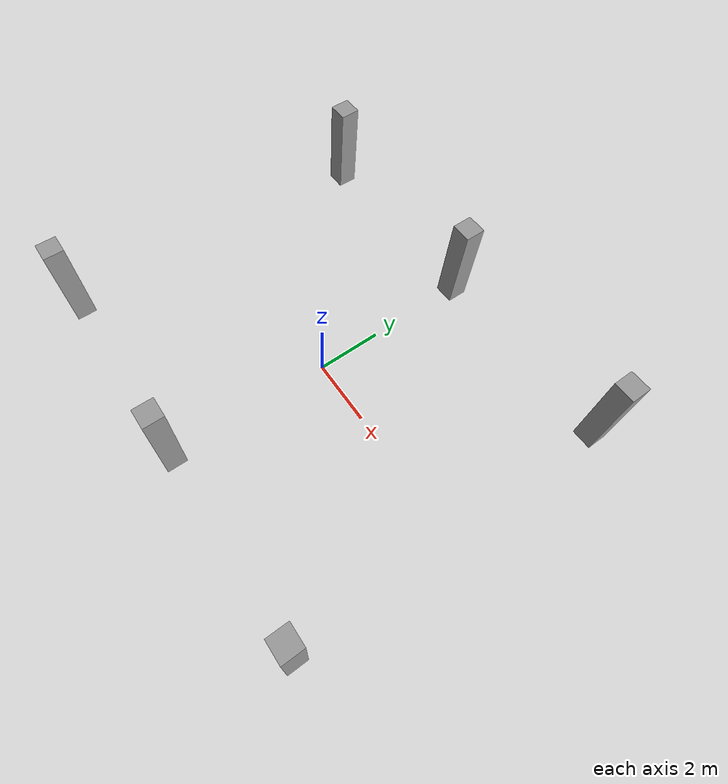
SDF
<?xml version='1.0'?>
<sdf version='1.6'>
  <model name='wall-room-rough'>
    <static>true</static>
    <link name='base_link'>
      <pose frame=''>0 0 0 0 -0 0</pose>
      <inertial>
        <pose frame=''>0 0 2.6266 0 -0 0</pose>
        <mass>72272</mass>
        <inertia>
          <ixx>2.0471e+06</ixx>
          <ixy>3.1237e-10</ixy>
          <ixz>-7.1616e-10</ixz>
          <iyy>2.0055e+06</iyy>
          <iyz>9.3517e-11</iyz>
          <izz>4.0205e+06</izz>
        </inertia>
      </inertial>
      <collision name='base_link_collision'>
        <pose frame=''>0 0 0 0 -0 0</pose>
        <geometry>
          <mesh>
            <scale>1 1 1</scale>
            <uri>model://walls/wall-room-rough/meshes/base_link.STL</uri>
          </mesh>
        </geometry>
      </collision>
      <visual name='base_link_visual'>
        <pose frame=''>0 0 0 0 -0 0</pose>
        <geometry>
          <mesh>
            <scale>1 1 1</scale>
            <uri>model://walls/wall-room-rough/meshes/base_link.STL</uri>
          </mesh>
        </geometry>
        <material>
          <lighting>1</lighting>
          <script>
            <uri>file://media/materials/scripts/gazebo.material</uri>
            <name>Gazebo/Grey</name>
          </script>
          <shader type='pixel'>
            <normal_map>__default__</normal_map>
          </shader>
          <ambient>0.3 0.3 0.3 1</ambient>
          <diffuse>0.7 0.7 0.7 1</diffuse>
          <specular>0.01 0.01 0.01 1</specular>
          <emissive>0 0 0 1</emissive>
        </material>
        <transparency>1</transparency>
      </visual>
    </link>
    <link name='pillar_0'>
      <inertial>
        <mass>1</mass>
        <inertia>
          <ixx>0.166667</ixx>
          <ixy>0</ixy>
          <ixz>0</ixz>
          <iyy>0.166667</iyy>
          <iyz>0</iyz>
          <izz>0.166667</izz>
        </inertia>
        <pose frame=''>0 0 0 0 -0 0</pose>
      </inertial>
      <pose frame=''>0 5 1.5 0 -0 0</pose>
      <gravity>1</gravity>
      <self_collide>0</self_collide>
      <kinematic>0</kinematic>
      <enable_wind>0</enable_wind>
      <visual name='visual'>
        <pose frame=''>0 0 0 0 -0 0</pose>
        <geometry>
          <box>
            <size>0.6 0.6 3</size>
          </box>
        </geometry>
        <material>
          <lighting>1</lighting>
          <script>
            <uri>file://media/materials/scripts/gazebo.material</uri>
            <name>Gazebo/Grey</name>
          </script>
          <shader type='pixel'>
            <normal_map>__default__</normal_map>
          </shader>
          <ambient>0.3 0.3 0.3 1</ambient>
          <diffuse>0.7 0.7 0.7 1</diffuse>
          <specular>0.01 0.01 0.01 1</specular>
          <emissive>0 0 0 1</emissive>
        </material>
        <transparency>0</transparency>
        <cast_shadows>1</cast_shadows>
      </visual>
      <collision name='collision'>
        <laser_retro>0</laser_retro>
        <max_contacts>10</max_contacts>
        <pose frame=''>0 0 0 0 -0 0</pose>
        <geometry>
          <box>
            <size>0.6 0.6 3</size>
          </box>
        </geometry>
        <surface>
          <friction>
            <ode>
              <mu>1</mu>
              <mu2>1</mu2>
              <fdir1>0 0 0</fdir1>
              <slip1>0</slip1>
              <slip2>0</slip2>
            </ode>
            <torsional>
              <coefficient>1</coefficient>
              <patch_radius>0</patch_radius>
              <surface_radius>0</surface_radius>
              <use_patch_radius>1</use_patch_radius>
              <ode>
                <slip>0</slip>
              </ode>
            </torsional>
          </friction>
          <bounce>
            <restitution_coefficient>0</restitution_coefficient>
            <threshold>1e+06</threshold>
          </bounce>
          <contact>
            <collide_without_contact>0</collide_without_contact>
            <collide_without_contact_bitmask>1</collide_without_contact_bitmask>
            <collide_bitmask>1</collide_bitmask>
            <ode>
              <soft_cfm>0</soft_cfm>
              <soft_erp>0.2</soft_erp>
              <kp>1e+13</kp>
              <kd>1</kd>
              <max_vel>0.01</max_vel>
              <min_depth>0</min_depth>
            </ode>
            <bullet>
              <split_impulse>1</split_impulse>
              <split_impulse_penetration_threshold>-0.01</split_impulse_penetration_threshold>
              <soft_cfm>0</soft_cfm>
              <soft_erp>0.2</soft_erp>
              <kp>1e+13</kp>
              <kd>1</kd>
            </bullet>
          </contact>
        </surface>
      </collision>
    </link>
    <link name='pillar_1'>
      <inertial>
        <mass>1</mass>
        <inertia>
          <ixx>0.166667</ixx>
          <ixy>0</ixy>
          <ixz>0</ixz>
          <iyy>0.166667</iyy>
          <iyz>0</iyz>
          <izz>0.166667</izz>
        </inertia>
        <pose frame=''>0 0 0 0 -0 0</pose>
      </inertial>
      <pose frame=''>0 -5 1.5 0 -0 0</pose>
      <gravity>1</gravity>
      <self_collide>0</self_collide>
      <kinematic>0</kinematic>
      <enable_wind>0</enable_wind>
      <visual name='visual'>
        <pose frame=''>0 0 0 0 -0 0</pose>
        <geometry>
          <box>
            <size>0.6 0.6 3</size>
          </box>
        </geometry>
        <material>
          <lighting>1</lighting>
          <script>
            <uri>file://media/materials/scripts/gazebo.material</uri>
            <name>Gazebo/Grey</name>
          </script>
          <shader type='pixel'>
            <normal_map>__default__</normal_map>
          </shader>
          <ambient>0.3 0.3 0.3 1</ambient>
          <diffuse>0.7 0.7 0.7 1</diffuse>
          <specular>0.01 0.01 0.01 1</specular>
          <emissive>0 0 0 1</emissive>
        </material>
        <transparency>0</transparency>
        <cast_shadows>1</cast_shadows>
      </visual>
      <collision name='collision'>
        <laser_retro>0</laser_retro>
        <max_contacts>10</max_contacts>
        <pose frame=''>0 0 0 0 -0 0</pose>
        <geometry>
          <box>
            <size>0.6 0.6 3</size>
          </box>
        </geometry>
        <surface>
          <friction>
            <ode>
              <mu>1</mu>
              <mu2>1</mu2>
              <fdir1>0 0 0</fdir1>
              <slip1>0</slip1>
              <slip2>0</slip2>
            </ode>
            <torsional>
              <coefficient>1</coefficient>
              <patch_radius>0</patch_radius>
              <surface_radius>0</surface_radius>
              <use_patch_radius>1</use_patch_radius>
              <ode>
                <slip>0</slip>
              </ode>
            </torsional>
          </friction>
          <bounce>
            <restitution_coefficient>0</restitution_coefficient>
            <threshold>1e+06</threshold>
          </bounce>
          <contact>
            <collide_without_contact>0</collide_without_contact>
            <collide_without_contact_bitmask>1</collide_without_contact_bitmask>
            <collide_bitmask>1</collide_bitmask>
            <ode>
              <soft_cfm>0</soft_cfm>
              <soft_erp>0.2</soft_erp>
              <kp>1e+13</kp>
              <kd>1</kd>
              <max_vel>0.01</max_vel>
              <min_depth>0</min_depth>
            </ode>
            <bullet>
              <split_impulse>1</split_impulse>
              <split_impulse_penetration_threshold>-0.01</split_impulse_penetration_threshold>
              <soft_cfm>0</soft_cfm>
              <soft_erp>0.2</soft_erp>
              <kp>1e+13</kp>
              <kd>1</kd>
            </bullet>
          </contact>
        </surface>
      </collision>
    </link>
    <link name='pillar_2'>
      <inertial>
        <mass>1</mass>
        <inertia>
          <ixx>0.166667</ixx>
          <ixy>0</ixy>
          <ixz>0</ixz>
          <iyy>0.166667</iyy>
          <iyz>0</iyz>
          <izz>0.166667</izz>
        </inertia>
        <pose frame=''>0 0 0 0 -0 0</pose>
      </inertial>
      <pose frame=''>-6 5 1.5 0 -0 0</pose>
      <gravity>1</gravity>
      <self_collide>0</self_collide>
      <kinematic>0</kinematic>
      <enable_wind>0</enable_wind>
      <visual name='visual'>
        <pose frame=''>0 0 0 0 -0 0</pose>
        <geometry>
          <box>
            <size>0.6 0.6 3</size>
          </box>
        </geometry>
        <material>
          <lighting>1</lighting>
          <script>
            <uri>file://media/materials/scripts/gazebo.material</uri>
            <name>Gazebo/Grey</name>
          </script>
          <shader type='pixel'>
            <normal_map>__default__</normal_map>
          </shader>
          <ambient>0.3 0.3 0.3 1</ambient>
          <diffuse>0.7 0.7 0.7 1</diffuse>
          <specular>0.01 0.01 0.01 1</specular>
          <emissive>0 0 0 1</emissive>
        </material>
        <transparency>0</transparency>
        <cast_shadows>1</cast_shadows>
      </visual>
      <collision name='collision'>
        <laser_retro>0</laser_retro>
        <max_contacts>10</max_contacts>
        <pose frame=''>0 0 0 0 -0 0</pose>
        <geometry>
          <box>
            <size>0.6 0.6 3</size>
          </box>
        </geometry>
        <surface>
          <friction>
            <ode>
              <mu>1</mu>
              <mu2>1</mu2>
              <fdir1>0 0 0</fdir1>
              <slip1>0</slip1>
              <slip2>0</slip2>
            </ode>
            <torsional>
              <coefficient>1</coefficient>
              <patch_radius>0</patch_radius>
              <surface_radius>0</surface_radius>
              <use_patch_radius>1</use_patch_radius>
              <ode>
                <slip>0</slip>
              </ode>
            </torsional>
          </friction>
          <bounce>
            <restitution_coefficient>0</restitution_coefficient>
            <threshold>1e+06</threshold>
          </bounce>
          <contact>
            <collide_without_contact>0</collide_without_contact>
            <collide_without_contact_bitmask>1</collide_without_contact_bitmask>
            <collide_bitmask>1</collide_bitmask>
            <ode>
              <soft_cfm>0</soft_cfm>
              <soft_erp>0.2</soft_erp>
              <kp>1e+13</kp>
              <kd>1</kd>
              <max_vel>0.01</max_vel>
              <min_depth>0</min_depth>
            </ode>
            <bullet>
              <split_impulse>1</split_impulse>
              <split_impulse_penetration_threshold>-0.01</split_impulse_penetration_threshold>
              <soft_cfm>0</soft_cfm>
              <soft_erp>0.2</soft_erp>
              <kp>1e+13</kp>
              <kd>1</kd>
            </bullet>
          </contact>
        </surface>
      </collision>
    </link>
    <link name='pillar_3'>
      <inertial>
        <mass>1</mass>
        <inertia>
          <ixx>0.166667</ixx>
          <ixy>0</ixy>
          <ixz>0</ixz>
          <iyy>0.166667</iyy>
          <iyz>0</iyz>
          <izz>0.166667</izz>
        </inertia>
        <pose frame=''>0 0 0 0 -0 0</pose>
      </inertial>
      <pose frame=''>-6 -5 1.5 0 -0 0</pose>
      <gravity>1</gravity>
      <self_collide>0</self_collide>
      <kinematic>0</kinematic>
      <enable_wind>0</enable_wind>
      <visual name='visual'>
        <pose frame=''>0 0 0 0 -0 0</pose>
        <geometry>
          <box>
            <size>0.6 0.6 3</size>
          </box>
        </geometry>
        <material>
          <lighting>1</lighting>
          <script>
            <uri>file://media/materials/scripts/gazebo.material</uri>
            <name>Gazebo/Grey</name>
          </script>
          <shader type='pixel'>
            <normal_map>__default__</normal_map>
          </shader>
          <ambient>0.3 0.3 0.3 1</ambient>
          <diffuse>0.7 0.7 0.7 1</diffuse>
          <specular>0.01 0.01 0.01 1</specular>
          <emissive>0 0 0 1</emissive>
        </material>
        <transparency>0</transparency>
        <cast_shadows>1</cast_shadows>
      </visual>
      <collision name='collision'>
        <laser_retro>0</laser_retro>
        <max_contacts>10</max_contacts>
        <pose frame=''>0 0 0 0 -0 0</pose>
        <geometry>
          <box>
            <size>0.6 0.6 3</size>
          </box>
        </geometry>
        <surface>
          <friction>
            <ode>
              <mu>1</mu>
              <mu2>1</mu2>
              <fdir1>0 0 0</fdir1>
              <slip1>0</slip1>
              <slip2>0</slip2>
            </ode>
            <torsional>
              <coefficient>1</coefficient>
              <patch_radius>0</patch_radius>
              <surface_radius>0</surface_radius>
              <use_patch_radius>1</use_patch_radius>
              <ode>
                <slip>0</slip>
              </ode>
            </torsional>
          </friction>
          <bounce>
            <restitution_coefficient>0</restitution_coefficient>
            <threshold>1e+06</threshold>
          </bounce>
          <contact>
            <collide_without_contact>0</collide_without_contact>
            <collide_without_contact_bitmask>1</collide_without_contact_bitmask>
            <collide_bitmask>1</collide_bitmask>
            <ode>
              <soft_cfm>0</soft_cfm>
              <soft_erp>0.2</soft_erp>
              <kp>1e+13</kp>
              <kd>1</kd>
              <max_vel>0.01</max_vel>
              <min_depth>0</min_depth>
            </ode>
            <bullet>
              <split_impulse>1</split_impulse>
              <split_impulse_penetration_threshold>-0.01</split_impulse_penetration_threshold>
              <soft_cfm>0</soft_cfm>
              <soft_erp>0.2</soft_erp>
              <kp>1e+13</kp>
              <kd>1</kd>
            </bullet>
          </contact>
        </surface>
      </collision>
    </link>
    <link name='pillar_4'>
      <inertial>
        <mass>1</mass>
        <inertia>
          <ixx>0.166667</ixx>
          <ixy>0</ixy>
          <ixz>0</ixz>
          <iyy>0.166667</iyy>
          <iyz>0</iyz>
          <izz>0.166667</izz>
        </inertia>
        <pose frame=''>0 0 0 0 -0 0</pose>
      </inertial>
      <pose frame=''>6 5 1.5 0 -0 0</pose>
      <gravity>1</gravity>
      <self_collide>0</self_collide>
      <kinematic>0</kinematic>
      <enable_wind>0</enable_wind>
      <visual name='visual'>
        <pose frame=''>0 0 0 0 -0 0</pose>
        <geometry>
          <box>
            <size>0.6 0.6 3</size>
          </box>
        </geometry>
        <material>
          <lighting>1</lighting>
          <script>
            <uri>file://media/materials/scripts/gazebo.material</uri>
            <name>Gazebo/Grey</name>
          </script>
          <shader type='pixel'>
            <normal_map>__default__</normal_map>
          </shader>
          <ambient>0.3 0.3 0.3 1</ambient>
          <diffuse>0.7 0.7 0.7 1</diffuse>
          <specular>0.01 0.01 0.01 1</specular>
          <emissive>0 0 0 1</emissive>
        </material>
        <transparency>0</transparency>
        <cast_shadows>1</cast_shadows>
      </visual>
      <collision name='collision'>
        <laser_retro>0</laser_retro>
        <max_contacts>10</max_contacts>
        <pose frame=''>0 0 0 0 -0 0</pose>
        <geometry>
          <box>
            <size>0.6 0.6 3</size>
          </box>
        </geometry>
        <surface>
          <friction>
            <ode>
              <mu>1</mu>
              <mu2>1</mu2>
              <fdir1>0 0 0</fdir1>
              <slip1>0</slip1>
              <slip2>0</slip2>
            </ode>
            <torsional>
              <coefficient>1</coefficient>
              <patch_radius>0</patch_radius>
              <surface_radius>0</surface_radius>
              <use_patch_radius>1</use_patch_radius>
              <ode>
                <slip>0</slip>
              </ode>
            </torsional>
          </friction>
          <bounce>
            <restitution_coefficient>0</restitution_coefficient>
            <threshold>1e+06</threshold>
          </bounce>
          <contact>
            <collide_without_contact>0</collide_without_contact>
            <collide_without_contact_bitmask>1</collide_without_contact_bitmask>
            <collide_bitmask>1</collide_bitmask>
            <ode>
              <soft_cfm>0</soft_cfm>
              <soft_erp>0.2</soft_erp>
              <kp>1e+13</kp>
              <kd>1</kd>
              <max_vel>0.01</max_vel>
              <min_depth>0</min_depth>
            </ode>
            <bullet>
              <split_impulse>1</split_impulse>
              <split_impulse_penetration_threshold>-0.01</split_impulse_penetration_threshold>
              <soft_cfm>0</soft_cfm>
              <soft_erp>0.2</soft_erp>
              <kp>1e+13</kp>
              <kd>1</kd>
            </bullet>
          </contact>
        </surface>
      </collision>
    </link>
    <link name='pillar_5'>
      <inertial>
        <mass>1</mass>
        <inertia>
          <ixx>0.166667</ixx>
          <ixy>0</ixy>
          <ixz>0</ixz>
          <iyy>0.166667</iyy>
          <iyz>0</iyz>
          <izz>0.166667</izz>
        </inertia>
        <pose frame=''>0 0 0 0 -0 0</pose>
      </inertial>
      <pose frame=''>6 -5 1.5 0 -0 0</pose>
      <gravity>1</gravity>
      <self_collide>0</self_collide>
      <kinematic>0</kinematic>
      <enable_wind>0</enable_wind>
      <visual name='visual'>
        <pose frame=''>0 0 0 0 -0 0</pose>
        <geometry>
          <box>
            <size>0.6 0.6 3</size>
          </box>
        </geometry>
        <material>
          <lighting>1</lighting>
          <script>
            <uri>file://media/materials/scripts/gazebo.material</uri>
            <name>Gazebo/Grey</name>
          </script>
          <shader type='pixel'>
            <normal_map>__default__</normal_map>
          </shader>
          <ambient>0.3 0.3 0.3 1</ambient>
          <diffuse>0.7 0.7 0.7 1</diffuse>
          <specular>0.01 0.01 0.01 1</specular>
          <emissive>0 0 0 1</emissive>
        </material>
        <transparency>0</transparency>
        <cast_shadows>1</cast_shadows>
      </visual>
      <collision name='collision'>
        <laser_retro>0</laser_retro>
        <max_contacts>10</max_contacts>
        <pose frame=''>0 0 0 0 -0 0</pose>
        <geometry>
          <box>
            <size>0.6 0.6 3</size>
          </box>
        </geometry>
        <surface>
          <friction>
            <ode>
              <mu>1</mu>
              <mu2>1</mu2>
              <fdir1>0 0 0</fdir1>
              <slip1>0</slip1>
              <slip2>0</slip2>
            </ode>
            <torsional>
              <coefficient>1</coefficient>
              <patch_radius>0</patch_radius>
              <surface_radius>0</surface_radius>
              <use_patch_radius>1</use_patch_radius>
              <ode>
                <slip>0</slip>
              </ode>
            </torsional>
          </friction>
          <bounce>
            <restitution_coefficient>0</restitution_coefficient>
            <threshold>1e+06</threshold>
          </bounce>
          <contact>
            <collide_without_contact>0</collide_without_contact>
            <collide_without_contact_bitmask>1</collide_without_contact_bitmask>
            <collide_bitmask>1</collide_bitmask>
            <ode>
              <soft_cfm>0</soft_cfm>
              <soft_erp>0.2</soft_erp>
              <kp>1e+13</kp>
              <kd>1</kd>
              <max_vel>0.01</max_vel>
              <min_depth>0</min_depth>
            </ode>
            <bullet>
              <split_impulse>1</split_impulse>
              <split_impulse_penetration_threshold>-0.01</split_impulse_penetration_threshold>
              <soft_cfm>0</soft_cfm>
              <soft_erp>0.2</soft_erp>
              <kp>1e+13</kp>
              <kd>1</kd>
            </bullet>
          </contact>
        </surface>
      </collision>
    </link>
  </model>
</sdf>
